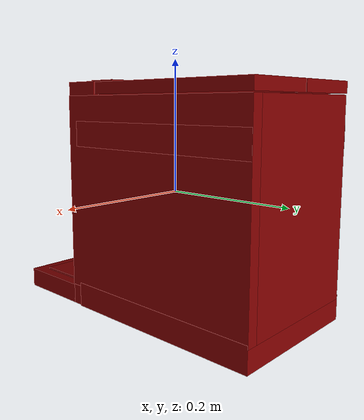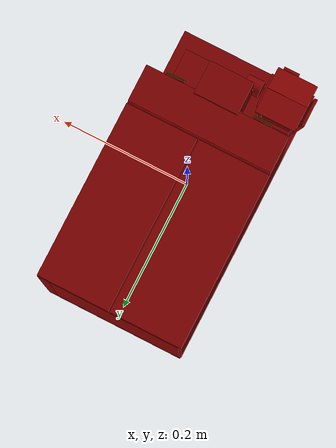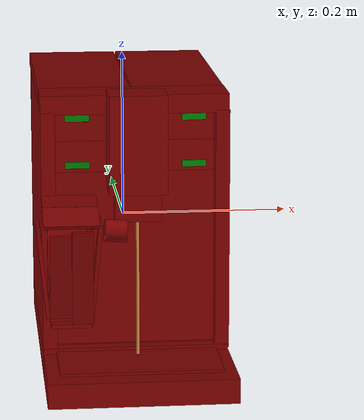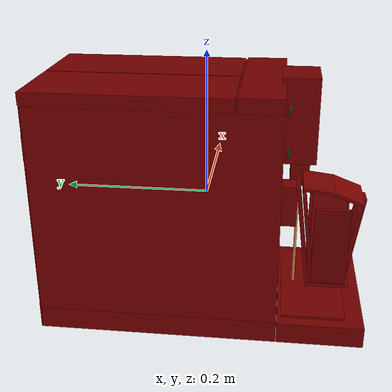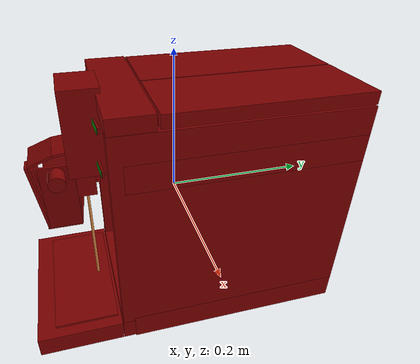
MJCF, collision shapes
<?xml version='1.0' encoding='UTF-8'?>
<mujoco model="model">
  <compiler angle="radian"/>
  <asset>
    <mesh file="visuals/Body001.obj" name="Body001_vis"/>
    <mesh file="visuals/Button001.obj" name="Button001_vis"/>
    <mesh file="visuals/Button002.obj" name="Button002_vis"/>
    <mesh file="visuals/Button003.obj" name="Button003_vis"/>
    <mesh file="visuals/Button004.obj" name="Button004_vis"/>
    <mesh file="visuals/Container001_Clear.obj" name="Container001_Clear_vis"/>
    <mesh file="visuals/Lid001.obj" name="Lid001_vis"/>
    <mesh file="visuals/Lid002.obj" name="Lid002_vis"/>
    <mesh file="visuals/Lid003.obj" name="Lid003_vis"/>
    <mesh file="visuals/Lid004.obj" name="Lid004_vis"/>
    <texture file="visuals/T_BC001.png" name="Body001_material" type="2d"/>
    <material name="Body001_material" rgba="1 1 1 1.0" texture="Body001_material" shininess="0.4359668493270874" specular="0.3103448502657381"/>
    <texture file="visuals/T_BC001.png" name="Button001_material" type="2d"/>
    <material name="Button001_material" rgba="1 1 1 1.0" texture="Button001_material" shininess="0.4359668493270874" specular="0.3103448502657381"/>
    <texture file="visuals/T_BC001.png" name="Button002_material" type="2d"/>
    <material name="Button002_material" rgba="1 1 1 1.0" texture="Button002_material" shininess="0.4359668493270874" specular="0.3103448502657381"/>
    <texture file="visuals/T_BC001.png" name="Button003_material" type="2d"/>
    <material name="Button003_material" rgba="1 1 1 1.0" texture="Button003_material" shininess="0.4359668493270874" specular="0.3103448502657381"/>
    <texture file="visuals/T_BC001.png" name="Button004_material" type="2d"/>
    <material name="Button004_material" rgba="1 1 1 1.0" texture="Button004_material" shininess="0.4359668493270874" specular="0.3103448502657381"/>
    <texture file="visuals/T_BC001.png" name="Container001_Clear_material" type="2d"/>
    <material name="Container001_Clear_material" rgba="1 1 1 0.1540302038192749" texture="Container001_Clear_material" shininess="0.752330482006073" specular="0.3103448502657381"/>
    <texture file="visuals/T_BC001.png" name="Lid001_material" type="2d"/>
    <material name="Lid001_material" rgba="1 1 1 1.0" texture="Lid001_material" shininess="0.4359668493270874" specular="0.3103448502657381"/>
    <texture file="visuals/T_BC001.png" name="Lid002_material" type="2d"/>
    <material name="Lid002_material" rgba="1 1 1 1.0" texture="Lid002_material" shininess="0.4359668493270874" specular="0.3103448502657381"/>
    <texture file="visuals/T_BC001.png" name="Lid003_material" type="2d"/>
    <material name="Lid003_material" rgba="1 1 1 1.0" texture="Lid003_material" shininess="0.4359668493270874" specular="0.3103448502657381"/>
    <texture file="visuals/T_BC001.png" name="Lid004_material" type="2d"/>
    <material name="Lid004_material" rgba="1 1 1 1.0" texture="Lid004_material" shininess="0.4359668493270874" specular="0.3103448502657381"/>
  </asset>
  <default>
    <default class="visual">
      <geom conaffinity="0" contype="0" group="1" type="mesh"/>
    </default>
    <default class="collision">
      <geom group="0" rgba="0.5 0 0 0.5"/>
    </default>
    <default class="spawn">
      <geom group="0" rgba="1 1 1 0.5" contype="0" conaffinity="0"/>
      <site group="0" rgba="1 1 1 0.5"/>
    </default>
    <default class="region">
      <geom group="1" conaffinity="0" contype="0" rgba="0 1 0 0"/>
    </default>
  </default>
  <worldbody>
    <body>
      <body name="object">
        <geom class="collision" type="box" pos="-0.061289 -0.112227 0.140676" size="0.014222359284758568 0.0004399062891025096 0.0038432003930211067" quat="0.9992694854736328 0.0 -0.0 -0.03821655735373497" name="start_button_1" rgba="0.0 0.5 0 0.5"/>
        <geom class="collision" type="box" pos="-0.061289 -0.112227 0.085061" size="0.014222359284758568 0.0004399062891025096 0.0038432003930211067" quat="0.9992694854736328 0.0 -0.0 -0.03821655735373497" name="start_button_2" rgba="0.0 0.5 0 0.5"/>
        <geom class="collision" type="box" pos="0.075193 -0.112264 0.140676" size="0.014330921694636345 0.0003496930003166199 0.0038432006258517504" quat="0.9992694854736328 0.0 0.0 0.03821655362844467" name="start_button_3" rgba="0.0 0.5 0 0.5"/>
        <geom class="collision" type="box" pos="0.075193 -0.112264 0.085061" size="0.014330921694636345 0.0003496930003166199 0.0038432006258517504" quat="0.9992694854736328 0.0 0.0 0.03821655362844467" name="start_button_4" rgba="0.0 0.5 0 0.5"/>
        <site type="cylinder" rgba="0.8 0.5 0.25 1" size="0.001991123892366886 0.09739799052476883" pos="0.007210 -0.128293 -0.068765" name="coffee_liquid"/>
        <site rgba="0 0 0 0" size="0.009999999776482582 0.009999999776482582" pos="0.007210 -0.128293 -0.134220" name="receptacle_place_site"/>
        <geom mesh="Body001_vis" type="mesh" solimp="0.998 0.998 0.001" solref="0.001 1" density="100" friction="0.95 0.3 0.1" class="visual" material="Body001_material"/>
        <geom class="collision" type="box" pos="0.006847 0.057309 -0.156921" size="0.11055029183626175 0.16324947774410248 0.017759844660758972" quat="1.0 0.0 0.0 0.0"/>
        <geom class="collision" type="box" pos="-0.095288 0.057606 0.001209" size="0.00841574463993311 0.16295187175273895 0.14486433565616608" quat="1.0 0.0 0.0 0.0"/>
        <geom class="collision" type="box" pos="0.006847 -0.077064 0.154682" size="0.11055029183626175 0.02817819081246853 0.011107346042990685" quat="1.0 0.0 0.0 0.0"/>
        <geom class="collision" type="box" pos="0.007200 -0.124389 0.114200" size="0.03388359397649765 0.025265181437134743 0.05828290805220604" quat="1.0 0.0 0.0 0.0"/>
        <geom class="collision" type="box" pos="0.007107 -0.128702 0.039898" size="0.026847777888178825 0.012762652710080147 0.016967598348855972" quat="1.0 0.0 0.0 0.0"/>
        <geom class="collision" type="box" pos="-0.074244 -0.169248 -0.084507" size="0.02326791174709797 0.027421671897172928 0.002338054357096553" quat="1.0 0.0 0.0 0.0"/>
        <geom class="collision" type="box" pos="-0.065148 -0.115472 0.016794" size="0.013696769252419472 0.01024654321372509 0.02737344242632389" quat="1.0 0.0 0.0 0.0"/>
        <geom class="collision" type="box" pos="0.006847 -0.164976 -0.160007" size="0.11055009067058563 0.05828294903039932 0.014674389734864235" quat="1.0 0.0 0.0 0.0"/>
        <geom class="collision" type="cylinder" pos="-0.021411 -0.169025 0.020163" size="0.012790870852768421 0.012790870852768421" quat="0.6829425692558289 0.0 0.7304720878601074 0.0"/>
        <geom class="collision" type="box" pos="-0.061498 -0.202401 -0.027466" size="0.012238278053700924 0.002145393518730998 0.05776975676417351" quat="0.9970054626464844 0.07733096927404404 0.0 0.0"/>
        <geom class="collision" type="box" pos="-0.045874 -0.168400 -0.025410" size="0.02600579522550106 0.002152161905542016 0.058762017637491226" quat="0.700783908367157 0.04042734578251839 0.02735087089240551 0.7117018103599548"/>
        <geom class="collision" type="box" pos="-0.075656 -0.134591 -0.018682" size="0.06855006515979767 0.02294057607650757 0.0023579024709761143" quat="0.5301965475082397 0.467858225107193 0.467852920293808 -0.53020179271698"/>
        <geom class="collision" type="box" pos="0.110107 0.058891 0.001209" size="0.00841574463993311 0.16423659026622772 0.14486433565616608" quat="1.0 0.0 0.0 0.0"/>
        <geom class="collision" type="box" pos="0.003956 0.214983 0.001209" size="0.10509026795625687 0.008144148625433445 0.14486433565616608" quat="1.0 0.0 0.0 0.0"/>
        <geom class="collision" type="box" pos="0.003956 -0.067757 0.010741" size="0.10509026795625687 0.020991263911128044 0.1543961763381958" quat="1.0 0.0 0.0 0.0"/>
        <geom class="collision" type="box" pos="0.007980 0.066909 -0.156703" size="0.11076942831277847 0.15588593482971191 0.01853438839316368" quat="1.0 0.0 0.0 0.0"/>
        <geom class="collision" type="box" pos="0.007980 0.066909 0.090591" size="0.11076942831277847 0.15588593482971191 0.01853438839316368" quat="1.0 0.0 0.0 0.0"/>
        <body name="Button001">
          <joint axis="0.0 1.0 0.0" pos="-0.061318 -0.110451 0.140290" limited="true" name="Button001_joint" range="0.0 0.001" type="slide" damping="1" frictionloss="1" armature=".01" stiffness="0.05"/>
          <geom mesh="Button001_vis" type="mesh" solimp="0.998 0.998 0.001" solref="0.001 1" density="100" friction="0.95 0.3 0.1" class="visual" material="Button001_material"/>
          <geom class="collision" type="box" pos="-0.061218 -0.110115 0.140316" size="0.013926518149673939 0.0011992605868726969 0.003834134666249156" quat="0.9992694854736328 0.0 -0.0 -0.03821655735373497"/>
        </body>
        <body name="Button002">
          <joint axis="0.0 1.0 0.0" pos="-0.061318 -0.110451 0.084743" limited="true" name="Button002_joint" range="0.0 0.001" type="slide" damping="1" frictionloss="1" armature=".01" stiffness="0.05"/>
          <geom mesh="Button002_vis" type="mesh" solimp="0.998 0.998 0.001" solref="0.001 1" density="100" friction="0.95 0.3 0.1" class="visual" material="Button002_material"/>
          <geom class="collision" type="box" pos="-0.061218 -0.110115 0.084701" size="0.013926518149673939 0.0011992605868726969 0.003834134666249156" quat="0.9992694854736328 0.0 -0.0 -0.03821655735373497"/>
        </body>
        <body name="Button003">
          <joint axis="0.0 1.0 0.0" pos="0.075110 -0.110451 0.140290" limited="true" name="Button003_joint" range="0.0 0.001" type="slide" damping="1" frictionloss="1" armature=".01" stiffness="0.05"/>
          <geom mesh="Button003_vis" type="mesh" solimp="0.998 0.998 0.001" solref="0.001 1" density="100" friction="0.95 0.3 0.1" class="visual" material="Button003_material"/>
          <geom class="collision" type="box" pos="0.075115 -0.110062 0.140316" size="0.01403281930834055 0.0011992602376267314 0.0038341348990797997" quat="0.9992694854736328 0.0 0.0 0.03821655362844467"/>
        </body>
        <body name="Button004">
          <joint axis="0.0 1.0 0.0" pos="0.075110 -0.110451 0.084743" limited="true" name="Button004_joint" range="0.0 0.001" type="slide" damping="1" frictionloss="1" armature=".01" stiffness="0.05"/>
          <geom mesh="Button004_vis" type="mesh" solimp="0.998 0.998 0.001" solref="0.001 1" density="100" friction="0.95 0.3 0.1" class="visual" material="Button004_material"/>
          <geom class="collision" type="box" pos="0.075115 -0.110062 0.084701" size="0.01403281930834055 0.0011992602376267314 0.0038341348990797997" quat="0.9992694854736328 0.0 0.0 0.03821655362844467"/>
        </body>
        <body name="Container001_Clear">
          <joint axis="-1.0 0.0 0.0" pos="-0.082270 -0.167995 -0.015837" limited="true" name="Container001_Clear_joint" range="0.0 0.1" type="slide" damping="1" frictionloss="1" armature=".01" stiffness="0.05"/>
          <geom mesh="Container001_Clear_vis" type="mesh" solimp="0.998 0.998 0.001" solref="0.001 1" density="100" friction="0.95 0.3 0.1" class="visual" material="Container001_Clear_material"/>
          <geom class="collision" type="box" pos="-0.077417 -0.167921 -0.077932" size="0.021539248526096344 0.0211621206253767 0.0023579015396535397" quat="1.0 0.0 0.0 0.0"/>
          <geom class="collision" type="box" pos="-0.051318 -0.169250 -0.024361" size="0.052918002009391785 0.022665979340672493 0.0023579015396535397" quat="0.7415195107460022 0.0 -0.670931339263916 0.0"/>
          <geom class="collision" type="box" pos="-0.105828 -0.169250 -0.023191" size="0.054334186017513275 0.022180814296007156 0.0023579015396535397" quat="0.7415195107460022 0.0 0.670931339263916 0.0"/>
          <geom class="collision" type="box" pos="-0.075656 -0.141305 -0.019075" size="0.057796694338321686 0.022940577939152718 0.0023579024709761143" quat="0.5301965475082397 0.467858225107193 0.467852920293808 -0.53020179271698"/>
          <geom class="collision" type="box" pos="-0.075656 -0.195762 -0.026321" size="0.050565704703330994 0.022940577939152718 0.0023579024709761143" quat="0.5357252955436707 -0.4615170359611511 0.46151313185691833 0.5357294678688049"/>
        </body>
        <body name="Lid001">
          <joint axis="0.0 -1.0 0.0" pos="-0.103499 0.088622 0.148389" limited="true" name="Lid001_joint" range="0.0 1.5707963267948966" type="hinge" damping="1" frictionloss="1" armature=".01" stiffness="0.05"/>
          <geom mesh="Lid001_vis" type="mesh" solimp="0.998 0.998 0.001" solref="0.001 1" density="100" friction="0.95 0.3 0.1" class="visual" material="Lid001_material"/>
          <geom class="collision" type="box" pos="-0.049357 0.088676 0.156305" size="0.05488770827651024 0.1339801549911499 0.008432487025856972" quat="1.0 0.0 0.0 0.0"/>
        </body>
        <body name="Lid002">
          <joint axis="0.0 1.0 0.0" pos="0.117297 0.088710 0.148408" limited="true" name="Lid002_joint" range="0.0 1.5707963267948966" type="hinge" damping="1" frictionloss="1" armature=".01" stiffness="0.05"/>
          <geom mesh="Lid002_vis" type="mesh" solimp="0.998 0.998 0.001" solref="0.001 1" density="100" friction="0.95 0.3 0.1" class="visual" material="Lid002_material"/>
          <geom class="collision" type="box" pos="0.062653 0.088676 0.156305" size="0.05488763377070427 0.13397985696792603 0.00843246839940548" quat="1.0 0.0 0.0 0.0"/>
        </body>
        <body name="Lid003">
          <joint axis="0.0 0.9659258723258972 0.2588190734386444" pos="-0.041547 -0.168132 0.044348" limited="true" name="Lid003_joint" range="0.0 1.5707963267948966" type="hinge" damping="1" frictionloss="1" armature=".01" stiffness="0.05"/>
          <geom mesh="Lid003_vis" type="mesh" solimp="0.998 0.998 0.001" solref="0.001 1" density="100" friction="0.95 0.3 0.1" class="visual" material="Lid003_material"/>
          <geom class="collision" type="box" pos="-0.073456 -0.151295 0.050327" size="0.03174545243382454 0.019953299313783646 0.0018709094729274511" quat="0.9982343912124634 0.05939772352576256 0.0 0.0"/>
          <geom class="collision" type="box" pos="-0.073456 -0.188886 0.041002" size="0.03174545243382454 0.019364114850759506 0.0019310504430904984" quat="0.9834569096565247 0.18114237487316132 0.0 0.0"/>
        </body>
        <body name="Lid004">
          <joint axis="0.0 0.0 1.0" pos="0.006896 -0.147762 -0.144546" limited="true" name="Lid004_joint" range="0.0 0.04" type="slide" damping="1" frictionloss="1" armature=".01" stiffness="0.05"/>
          <geom mesh="Lid004_vis" type="mesh" solimp="0.998 0.998 0.001" solref="0.001 1" density="100" friction="0.95 0.3 0.1" class="visual" material="Lid004_material"/>
          <geom class="collision" type="box" pos="0.006896 -0.154650 -0.142700" size="0.0953536182641983 0.043696627020835876 0.0015998053131625056" quat="1.0 0.0 0.0 0.0"/>
        </body>
        <geom class="region" name="reg_main" type="box" pos="0.006895999999999999 0.0 0.0" size="0.1105 0.22276 0.17471"/>
      </body>
    </body>
  </worldbody>
  <actuator>
    <motor name="Button001_joint_actuator" joint="Button001_joint" gear="0.5"/>
    <motor name="Button002_joint_actuator" joint="Button002_joint" gear="0.5"/>
    <motor name="Button003_joint_actuator" joint="Button003_joint" gear="0.5"/>
    <motor name="Button004_joint_actuator" joint="Button004_joint" gear="0.5"/>
    <motor name="Container001_Clear_joint_actuator" joint="Container001_Clear_joint" gear="10"/>
    <motor name="Lid001_joint_actuator" joint="Lid001_joint" gear="10"/>
    <motor name="Lid002_joint_actuator" joint="Lid002_joint" gear="10"/>
    <motor name="Lid003_joint_actuator" joint="Lid003_joint" gear="10"/>
    <motor name="Lid004_joint_actuator" joint="Lid004_joint" gear="10"/>
  </actuator>
</mujoco>
